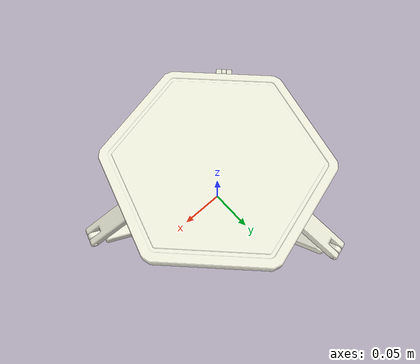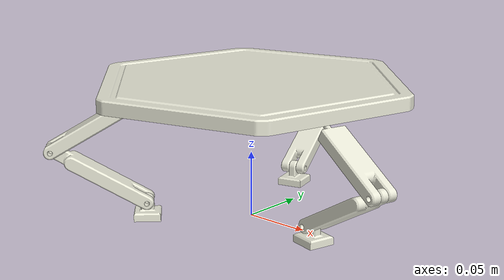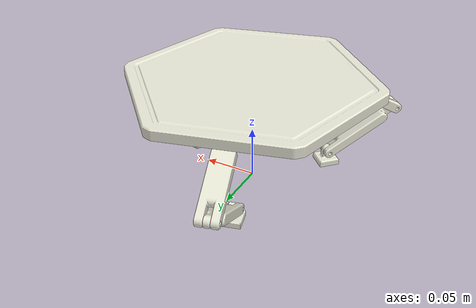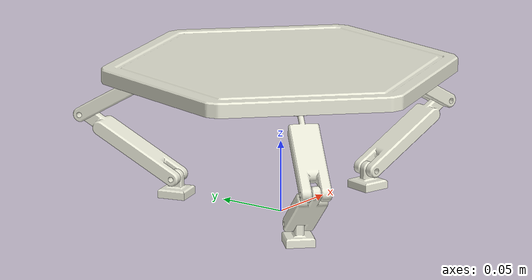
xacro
<?xml version="1.0"?>

<robot name="juggling_platform_3d" xmlns:xacro="http://www.ros.org/wiki/xacro">

    <xacro:include filename="$(find balancing_platform_3d_description)/urdf/include/const.xacro"/>
    <xacro:include filename="$(find balancing_platform_3d_description)/urdf/include/materials.xacro"/>

    <link name="world"/>

    <link name="first_motor">
        <visual>
            <origin rpy="0 0 0" xyz="0 0 0"/>
            <geometry>
                <mesh filename="package://balancing_platform_3d_description/meshes/motor.stl" scale="0.001 0.001 0.001"/>
            </geometry>
            <material name="silver"/>
        </visual>
        <inertial>
            <origin rpy="0 0 0" xyz="${motor_com_x} ${motor_com_y} ${motor_com_z}"/>
            <mass value="${motor_mass}"/>
            <inertia
                ixx="${motor_ixx}" ixy="${motor_ixy}" ixz="${motor_ixz}"
                iyy="${motor_iyy}" iyz="${motor_iyz}"
                izz="${motor_izz}"/>
        </inertial>
    </link>

    <joint name="first_base_joint" type="fixed">
        <origin rpy="0 0 ${pi/4}" xyz="-0.055343798 -0.055343798 0"/>
        <parent link="world"/>
        <child link="first_motor"/>
    </joint>

    <link name="first_low_arm">
        <visual>
            <origin rpy="0 0 0" xyz="0 0 0.04"/>
            <geometry>
                <mesh filename="package://balancing_platform_3d_description/meshes/arm.stl" scale="0.001 0.001 0.001"/>
            </geometry>
            <material name="silver"/>
        </visual>
        <inertial>
            <origin rpy="0 0 0" xyz="${arm_com_x} ${arm_com_y} ${arm_com_z}"/>
            <mass value="${arm_mass}"/>
            <inertia
                ixx="${arm_ixx}" ixy="${arm_ixy}" ixz="${arm_ixz}"
                iyy="${arm_iyy}" iyz="${arm_iyz}"
                izz="${arm_izz}"/>
        </inertial>
    </link>

    <joint name="first_motor_joint" type="revolute">
        <origin rpy="0 ${-pi/3} 0" xyz="0 0 0.014"/>
        <parent link="first_motor"/>
        <child link="first_low_arm"/>
        <axis xyz="0 1 0"/>
        <dynamics damping="${damping}" friction="${friction}"/>
        <limit effort="${motor_torque_max}" velocity="${motor_velocity_max}" lower="${motor_position_min}" upper="${motor_position_max}"/>
    </joint>

    <link name="first_top_arm">
        <visual>
            <origin rpy="0 0 0" xyz="0 0 0.04"/>
            <geometry>
                <mesh filename="package://balancing_platform_3d_description/meshes/arm_3d.stl" scale="0.001 0.001 0.001"/>
            </geometry>
            <material name="silver"/>
        </visual>
        <inertial>
            <origin rpy="0 0 0" xyz="${arm_com_x} ${arm_com_y} ${arm_com_z}"/>
            <mass value="${arm_mass}"/>
            <inertia
                ixx="${arm_ixx}" ixy="${arm_ixy}" ixz="${arm_ixz}"
                iyy="${arm_iyy}" iyz="${arm_iyz}"
                izz="${arm_izz}"/>
        </inertial>
    </link>

    <joint name="first_arm_joint" type="revolute">
        <origin rpy="0 ${2*pi/3} 0" xyz="0 0 0.08"/>
        <parent link="first_low_arm"/>
        <child link="first_top_arm"/>
        <axis xyz="0 1 0"/>
        <dynamics damping="${damping}" friction="${friction}"/>
        <limit effort="${arm_torque_max}" velocity="${arm_velocity_max}" lower="${arm_position_min}" upper="${arm_position_max}"/>
    </joint>

    <link name="platform">
        <visual>
            <origin rpy="0 0 ${pi/2}" xyz="0 0 0"/>
            <geometry>
                <mesh filename="package://balancing_platform_3d_description/meshes/platform_3d.stl" scale="0.001 0.001 0.001"/>
            </geometry>
            <material name="silver"/>
        </visual>
        <collision>
            <origin rpy="0 0 ${pi/2}" xyz="0 0 0"/>
            <geometry>
                <box size="${platform_length} ${platform_width} ${platform_height}"/>
            </geometry>
        </collision>
        <inertial>
            <origin rpy="0 0 0" xyz="${platform_com_x} ${platform_com_y} ${platform_com_z}"/>
            <mass value="${platform_mass}"/>
            <inertia
                ixx="${platform_ixx}" ixy="${platform_ixy}" ixz="${platform_ixz}"
                iyy="${platform_iyy}" iyz="${platform_iyz}"
                izz="${platform_izz}"/>
        </inertial>
    </link>

    <!-- Links intermedios -->
    <link name="first_top_arm_x_link"/>
    <link name="first_top_arm_y_link"/>
    <link name="first_anchor_link"/>

    <joint name="first_platform_joint_x" type="revolute">
        <origin rpy="0 0 0" xyz="0 0 0.078"/>
        <parent link="first_top_arm"/>
        <child link="first_top_arm_x_link"/>
        <axis xyz="1 0 0"/>
        <dynamics damping="${damping}" friction="${friction}"/>
        <limit effort="${platform_torque_max}" velocity="${platform_velocity_max}" lower="${platform_position_min}" upper="${platform_position_max}"/>
    </joint>

    <joint name="first_platform_joint_y" type="revolute">
        <origin rpy="0 -${pi/3} 0" xyz="0 0 0"/>
        <parent link="first_top_arm_x_link"/>
        <child link="first_top_arm_y_link"/>
        <axis xyz="0 1 0"/>
        <dynamics damping="${damping}" friction="${friction}"/>
        <limit effort="${platform_torque_max}" velocity="${platform_velocity_max}" lower="${platform_position_min}" upper="${platform_position_max}"/>
    </joint>

    <joint name="first_platform_joint_z" type="revolute">
        <origin rpy="0 0 ${pi/2}" xyz="0 0 0"/>
        <parent link="first_top_arm_y_link"/>
        <child link="first_anchor_link"/>
        <axis xyz="0 0 1"/>
        <dynamics damping="${damping}" friction="${friction}"/>
        <limit effort="${platform_torque_max}" velocity="${platform_velocity_max}" lower="${platform_position_min}" upper="${platform_position_max}"/>
    </joint>

    <joint name="first_anchor_joint" type="fixed">
        <origin rpy="0 0 0" xyz="0 -0.08 0.003"/>
        <parent link="first_anchor_link"/>
        <child link="platform"/>
    </joint>

    <!-- Second arm -->
    <link name="second_top_arm">
        <visual>
            <origin rpy="0 0 0" xyz="0 0 -0.038"/>
            <geometry>
                <mesh filename="package://balancing_platform_3d_description/meshes/arm_3d.stl" scale="0.001 0.001 0.001"/>
            </geometry>
            <material name="silver"/>
        </visual>
        <inertial>
            <origin rpy="0 0 0" xyz="${arm_com_x} ${arm_com_y} ${arm_com_z}"/>
            <mass value="${arm_mass}"/>
            <inertia
                ixx="${arm_ixx}" ixy="${arm_ixy}" ixz="${arm_ixz}"
                iyy="${arm_iyy}" iyz="${arm_iyz}"
                izz="${arm_izz}"/>
        </inertial>
    </link>

    <!-- Links intermedios -->
    <link name="second_top_arm_x_link"/>
    <link name="second_top_arm_y_link"/>
    <link name="second_anchor_link"/>

    <joint name="second_anchor_joint" type="fixed">
        <origin rpy="0 0 ${2*pi/3}" xyz="-0.069282032 -0.04 0"/>
        <parent link="platform"/>
        <child link="second_anchor_link"/>
    </joint>

    <joint name="second_platform_joint_z" type="revolute">
        <origin rpy="0 0 0" xyz="0 0 0"/>
        <parent link="second_anchor_link"/>
        <child link="second_top_arm_y_link"/>
        <axis xyz="0 0 1"/>
        <dynamics damping="${damping}" friction="${friction}"/>
        <limit effort="${platform_torque_max}" velocity="${platform_velocity_max}" lower="${platform_position_min}" upper="${platform_position_max}"/>
    </joint>

    <joint name="second_platform_joint_y" type="revolute">
        <origin xyz="0 0 0" rpy="0 0 ${-pi/2}"/>
        <parent link="second_top_arm_y_link"/>
        <child link="second_top_arm_x_link"/>
        <axis xyz="0 1 0"/>
        <dynamics damping="${damping}" friction="${friction}"/>
        <limit effort="${platform_torque_max}" velocity="${platform_velocity_max}"
                lower="${platform_position_min}" upper="${platform_position_max}"/>
    </joint>

    <joint name="second_platform_joint_x" type="revolute">
        <origin xyz="0 0 0" rpy="0 ${pi/3} 0"/>
        <parent link="second_top_arm_x_link"/>
        <child link="second_top_arm"/>
        <axis xyz="1 0 0"/>
        <dynamics damping="${damping}" friction="${friction}"/>
        <limit effort="${platform_torque_max}" velocity="${platform_velocity_max}"
                lower="${platform_position_min}" upper="${platform_position_max}"/>
    </joint>

    <link name="second_low_arm">
        <visual>
            <origin rpy="0 0 0" xyz="0 0 -0.04"/>
            <geometry>
                <mesh filename="package://balancing_platform_3d_description/meshes/arm.stl" scale="0.001 0.001 0.001"/>
            </geometry>
            <material name="silver"/>
        </visual>
        <inertial>
            <origin rpy="0 0 0" xyz="${arm_com_x} ${arm_com_y} ${arm_com_z}"/>
            <mass value="${arm_mass}"/>
            <inertia
                ixx="${arm_ixx}" ixy="${arm_ixy}" ixz="${arm_ixz}"
                iyy="${arm_iyy}" iyz="${arm_iyz}"
                izz="${arm_izz}"/>
        </inertial>
    </link>

    <joint name="second_arm_joint" type="revolute">
        <origin rpy="0 ${-2*pi/3} 0" xyz="0 0 -0.078"/>
        <parent link="second_top_arm"/>
        <child link="second_low_arm"/>
        <axis xyz="0 1 0"/>
        <dynamics damping="${damping}" friction="${friction}"/>
        <limit effort="${arm_torque_max}" velocity="${arm_velocity_max}" lower="${arm_position_min}" upper="${arm_position_max}"/>
    </joint>

    <link name="second_motor">
        <visual>
            <origin rpy="0 0 0" xyz="0 0 -0.014"/>
            <geometry>
                <mesh filename="package://balancing_platform_3d_description/meshes/motor.stl" scale="0.001 0.001 0.001"/>
            </geometry>
            <material name="silver"/>
        </visual>
        <inertial>
            <origin rpy="0 0 0" xyz="${motor_com_x} ${motor_com_y} ${motor_com_z}"/>
            <mass value="${motor_mass}"/>
            <inertia
                ixx="${motor_ixx}" ixy="${motor_ixy}" ixz="${motor_ixz}"
                iyy="${motor_iyy}" iyz="${motor_iyz}"
                izz="${motor_izz}"/>
        </inertial>
    </link>

    <joint name="second_motor_joint" type="revolute">
        <origin rpy="0 ${pi/3} 0" xyz="0 0 -0.08"/>
        <parent link="second_low_arm"/>
        <child link="second_motor"/>
        <axis xyz="0 1 0"/>
        <dynamics damping="${damping}" friction="${friction}"/>
        <limit effort="${motor_torque_max}" velocity="${motor_velocity_max}" lower="${motor_position_min}" upper="${motor_position_max}"/>
    </joint>

    <!-- Third arm -->
    <link name="third_top_arm">
        <visual>
            <origin rpy="0 0 0" xyz="0 0 -0.038"/>
            <geometry>
                <mesh filename="package://balancing_platform_3d_description/meshes/arm_3d.stl" scale="0.001 0.001 0.001"/>
            </geometry>
            <material name="silver"/>
        </visual>
        <inertial>
            <origin rpy="0 0 0" xyz="${arm_com_x} ${arm_com_y} ${arm_com_z}"/>
            <mass value="${arm_mass}"/>
            <inertia
                ixx="${arm_ixx}" ixy="${arm_ixy}" ixz="${arm_ixz}"
                iyy="${arm_iyy}" iyz="${arm_iyz}"
                izz="${arm_izz}"/>
        </inertial>
    </link>

    <!-- Links intermedios -->
    <link name="third_top_arm_x_link"/>
    <link name="third_top_arm_y_link"/>
    <link name="third_anchor_link"/>

    <joint name="third_anchor_joint" type="fixed">
        <origin rpy="0 0 ${-2*pi/3}" xyz="0.069282032 -0.04 0"/>
        <parent link="platform"/>
        <child link="third_anchor_link"/>
    </joint>

    <joint name="third_platform_joint_z" type="revolute">
        <origin rpy="0 0 0" xyz="0 0 0"/>
        <parent link="third_anchor_link"/>
        <child link="third_top_arm_y_link"/>
        <axis xyz="0 0 1"/>
        <dynamics damping="${damping}" friction="${friction}"/>
        <limit effort="${platform_torque_max}" velocity="${platform_velocity_max}" lower="${platform_position_min}" upper="${platform_position_max}"/>
    </joint>

    <joint name="third_platform_joint_y" type="revolute">
        <origin xyz="0 0 0" rpy="0 0 ${-pi/2}"/>
        <parent link="third_top_arm_y_link"/>
        <child link="third_top_arm_x_link"/>
        <axis xyz="0 1 0"/>
        <dynamics damping="${damping}" friction="${friction}"/>
        <limit effort="${platform_torque_max}" velocity="${platform_velocity_max}"
                lower="${platform_position_min}" upper="${platform_position_max}"/>
    </joint>

    <joint name="third_platform_joint_x" type="revolute">
        <origin xyz="0 0 0" rpy="0 ${pi/3} 0"/>
        <parent link="third_top_arm_x_link"/>
        <child link="third_top_arm"/>
        <axis xyz="1 0 0"/>
        <dynamics damping="${damping}" friction="${friction}"/>
        <limit effort="${platform_torque_max}" velocity="${platform_velocity_max}"
                lower="${platform_position_min}" upper="${platform_position_max}"/>
    </joint>

    <link name="third_low_arm">
        <visual>
            <origin rpy="0 0 0" xyz="0 0 -0.04"/>
            <geometry>
                <mesh filename="package://balancing_platform_3d_description/meshes/arm.stl" scale="0.001 0.001 0.001"/>
            </geometry>
            <material name="silver"/>
        </visual>
        <inertial>
            <origin rpy="0 0 0" xyz="${arm_com_x} ${arm_com_y} ${arm_com_z}"/>
            <mass value="${arm_mass}"/>
            <inertia
                ixx="${arm_ixx}" ixy="${arm_ixy}" ixz="${arm_ixz}"
                iyy="${arm_iyy}" iyz="${arm_iyz}"
                izz="${arm_izz}"/>
        </inertial>
    </link>

    <joint name="third_arm_joint" type="revolute">
        <origin rpy="0 ${-2*pi/3} 0" xyz="0 0 -0.078"/>
        <parent link="third_top_arm"/>
        <child link="third_low_arm"/>
        <axis xyz="0 1 0"/>
        <dynamics damping="${damping}" friction="${friction}"/>
        <limit effort="${arm_torque_max}" velocity="${arm_velocity_max}" lower="${arm_position_min}" upper="${arm_position_max}"/>
    </joint>

    <link name="third_motor">
        <visual>
            <origin rpy="0 0 0" xyz="0 0 -0.014"/>
            <geometry>
                <mesh filename="package://balancing_platform_3d_description/meshes/motor.stl" scale="0.001 0.001 0.001"/>
            </geometry>
            <material name="silver"/>
        </visual>
        <inertial>
            <origin rpy="0 0 0" xyz="${motor_com_x} ${motor_com_y} ${motor_com_z}"/>
            <mass value="${motor_mass}"/>
            <inertia
                ixx="${motor_ixx}" ixy="${motor_ixy}" ixz="${motor_ixz}"
                iyy="${motor_iyy}" iyz="${motor_iyz}"
                izz="${motor_izz}"/>
        </inertial>
    </link>

    <joint name="third_motor_joint" type="revolute">
        <origin rpy="0 ${pi/3} 0" xyz="0 0 -0.08"/>
        <parent link="third_low_arm"/>
        <child link="third_motor"/>
        <axis xyz="0 1 0"/>
        <dynamics damping="${damping}" friction="${friction}"/>
        <limit effort="${motor_torque_max}" velocity="${motor_velocity_max}" lower="${motor_position_min}" upper="${motor_position_max}"/>
    </joint>

</robot>

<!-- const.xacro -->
<robot xmlns:xacro="http://www.ros.org/wiki/xacro">

    <!-- simplified collision value -->
    <xacro:property name="platform_width" value="0.2"/>
    <xacro:property name="platform_length" value="0.2"/>
    <xacro:property name="platform_height" value="0.01"/>

    <!-- joint limits -->
    <xacro:property name="damping" value="0.0"/>
    <xacro:property name="friction" value="0.0"/>
    <xacro:property name="motor_position_max" value="3"/>
    <xacro:property name="motor_position_min" value="-3"/>
    <xacro:property name="motor_velocity_max" value="30.1"/>
    <xacro:property name="motor_torque_max" value="23.7"/>
    <xacro:property name="arm_position_max" value="3"/>
    <xacro:property name="arm_position_min" value="-3"/>
    <xacro:property name="arm_velocity_max" value="30.1"/>
    <xacro:property name="arm_torque_max" value="23.7"/>
    <xacro:property name="platform_position_max" value="3"/>
    <xacro:property name="platform_position_min" value="-3"/>
    <xacro:property name="platform_velocity_max" value="20.06"/>
    <xacro:property name="platform_torque_max" value="35.55"/>

    <!-- dynamics inertial value -->
    <!-- motor -->
    <xacro:property name="motor_mass" value="0.023468"/>
    <xacro:property name="motor_com_x" value="0.0"/>
    <xacro:property name="motor_com_y" value="0.00"/>
    <xacro:property name="motor_com_z" value="0.004761"/>
    <xacro:property name="motor_ixx" value="1.031498E-6"/>
    <xacro:property name="motor_ixy" value="0.0"/>
    <xacro:property name="motor_ixz" value="-2.287E-18"/>
    <xacro:property name="motor_iyy" value="1.057814E-6"/>
    <xacro:property name="motor_iyz" value="0.0"/>
    <xacro:property name="motor_izz" value="1.273548E-6"/>
    <!-- arm -->
    <xacro:property name="arm_mass" value="6.921"/>
    <xacro:property name="arm_com_x" value="0.021112"/>
    <xacro:property name="arm_com_y" value="0.00"/>
    <xacro:property name="arm_com_z" value="-0.005366"/>
    <xacro:property name="arm_ixx" value="0.02448"/>
    <xacro:property name="arm_ixy" value="0.00012166"/>
    <xacro:property name="arm_ixz" value="0.0014849"/>
    <xacro:property name="arm_iyy" value="0.098077"/>
    <xacro:property name="arm_iyz" value="-3.12E-05"/>
    <xacro:property name="arm_izz" value="0.107"/>
    <!-- platform -->
    <xacro:property name="platform_mass" value="6.921"/>
    <xacro:property name="platform_com_x" value="0.021112"/>
    <xacro:property name="platform_com_y" value="0.00"/>
    <xacro:property name="platform_com_z" value="-0.005366"/>
    <xacro:property name="platform_ixx" value="0.02448"/>
    <xacro:property name="platform_ixy" value="0.00012166"/>
    <xacro:property name="platform_ixz" value="0.0014849"/>
    <xacro:property name="platform_iyy" value="0.098077"/>
    <xacro:property name="platform_iyz" value="-3.12E-05"/>
    <xacro:property name="platform_izz" value="0.107"/>

</robot>

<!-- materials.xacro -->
<robot>

    <material name="orange">
        <color rgba="${255/255} ${163/255} ${1/255} 1.0"/>
    </material>

    <material name="silver">
        <color rgba="${233/255} ${233/255} ${216/255} 1.0"/>
    </material>

</robot>
